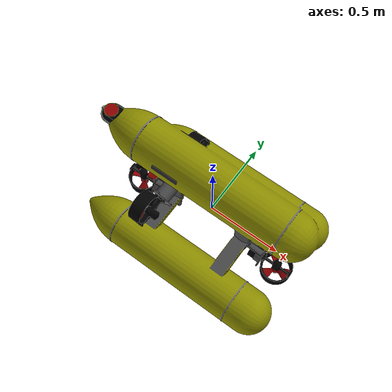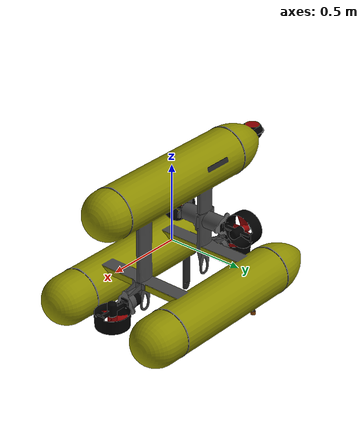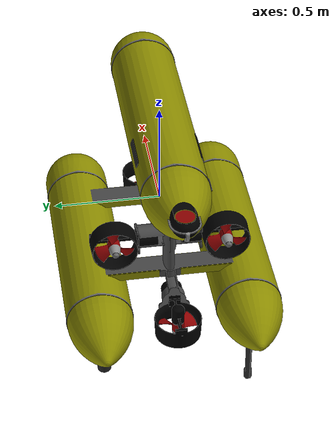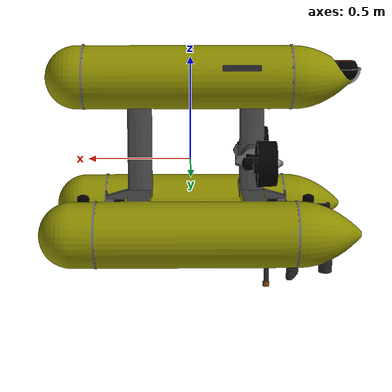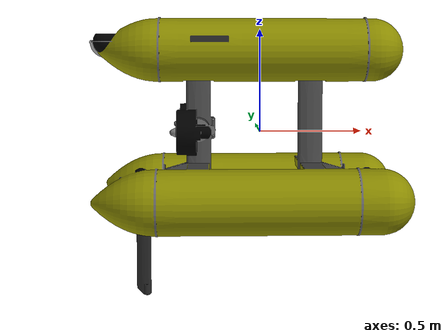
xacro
<?xml version='1.0' encoding='utf-8'?>
<robot xmlns:xacro="http://www.ros.org/wiki/xacro" name="$(arg robot_name)" family="underwater">
  <xacro:arg name="robot_name" default="girona500" />
  <xacro:arg name="environment" default="sim" />

  <!-- Vehicle -->
  <link name="$(arg robot_name)/base_link" tf_type="base">
    <visual>
      <origin rpy="-1.57 0 3.14" xyz="0.7 0 0.4" />
      <geometry>
        <mesh filename="package://girona500_description/meshes/girona500.dae" />
      </geometry>
    </visual>
  </link>

  <!-- Sensors -->
  <link name="$(arg robot_name)/dvl" tf_type="sensor" />
  <joint name="$(arg robot_name)/base_to_dvl" type="fixed">
    <parent link="$(arg robot_name)/base_link" />
    <child link="$(arg robot_name)/dvl" />
    <origin rpy="3.1416 0.0000 -0.7854" xyz="-0.643 0.000 0.538" />
  </joint>
  <link name="$(arg robot_name)/dvl_altitude" tf_type="sensor" />
  <joint name="$(arg robot_name)/base_to_dvl_altitude" type="fixed">
    <parent link="$(arg robot_name)/dvl" />
    <child link="$(arg robot_name)/dvl_altitude" />
    <origin rpy="0 1.5708 0" xyz="0 0 0" />
  </joint>
  <link name="$(arg robot_name)/gps" tf_type="sensor" />
  <joint name="$(arg robot_name)/base_to_gps" type="fixed">
    <parent link="$(arg robot_name)/base_link" />
    <child link="$(arg robot_name)/gps" />
    <origin rpy="0 0 0" xyz="-0.436 -0.350 -0.657" />
  </joint>
  <link name="$(arg robot_name)/imu" tf_type="sensor" />
  <joint name="$(arg robot_name)/base_to_imu" type="fixed">
    <parent link="$(arg robot_name)/base_link" />
    <child link="$(arg robot_name)/imu" />
    <origin rpy="1.5708 0 0" xyz="0.076 0.372 -0.301" />
  </joint>
  <link name="$(arg robot_name)/imu_filter" tf_type="sensor" />
  <joint name="$(arg robot_name)/base_to_imu_filter" type="fixed">
    <parent link="$(arg robot_name)/base_link" />
    <child link="$(arg robot_name)/imu_filter" />
    <origin rpy="0 0 0" xyz="0.076 0.372 -0.301" />
  </joint>
  <link name="$(arg robot_name)/pressure" tf_type="sensor" />
  <joint name="$(arg robot_name)/base_to_pressure" type="fixed">
    <parent link="$(arg robot_name)/base_link" />
    <child link="$(arg robot_name)/pressure" />
    <origin rpy="0 0 0" xyz="0.076 0.372 -0.301" />
  </joint>

  <!-- Thrusters -->
  <link name="$(arg robot_name)/thruster_0" tf_type="thruster" />
  <joint name="$(arg robot_name)/base_to_thruster_0" type="fixed">
    <parent link="$(arg robot_name)/base_link" />
    <child link="$(arg robot_name)/thruster_0" />
    <origin rpy="0 0 3.1416" xyz="-0.355 0.261 0.020" />
  </joint>
  <link name="$(arg robot_name)/thruster_1" tf_type="thruster" />
  <joint name="$(arg robot_name)/base_to_thruster_1" type="fixed">
    <parent link="$(arg robot_name)/base_link" />
    <child link="$(arg robot_name)/thruster_1" />
    <origin rpy="0 0 3.1416" xyz="-0.355 -0.261 0.020" />
  </joint>
  <link name="$(arg robot_name)/thruster_2" tf_type="thruster" />
  <joint name="$(arg robot_name)/base_to_thruster_2" type="fixed">
    <parent link="$(arg robot_name)/base_link" />
    <child link="$(arg robot_name)/thruster_2" />
    <origin rpy="0 1.5708 0" xyz="0.530 0 -0.310" />
  </joint>
  <link name="$(arg robot_name)/thruster_3" tf_type="thruster" />
  <joint name="$(arg robot_name)/base_to_thruster_3" type="fixed">
    <parent link="$(arg robot_name)/base_link" />
    <child link="$(arg robot_name)/thruster_3" />
    <origin rpy="0 1.5708 0" xyz="-0.585 0 -0.310" />
  </joint>
  <link name="$(arg robot_name)/thruster_4" tf_type="thruster" />
  <joint name="$(arg robot_name)/base_to_thruster_4" type="fixed">
    <parent link="$(arg robot_name)/base_link" />
    <child link="$(arg robot_name)/thruster_4" />
    <origin rpy="0 0 -1.5708" xyz="0 0 0" />
  </joint>

  <!-- Cameras -->
  <link name="$(arg robot_name)/camera_front" tf_type="sensor" />
  <joint name="$(arg robot_name)/base_to_camera_front" type="fixed">
    <parent link="$(arg robot_name)/base_link" />
    <child link="$(arg robot_name)/camera_front" />
    <origin rpy="1.57 0 1.2" xyz="0.38 0.1 0.1" />
  </joint>

  <link name="$(arg robot_name)/camera_down" tf_type="sensor"/>
  <joint name="$(arg robot_name)/camera_down_joint" type="fixed">
    <parent link="$(arg robot_name)/base_link"/>
    <child link="$(arg robot_name)/camera_down"/>
    <origin rpy="0 0 0" xyz="0.2 -0.048 0.76" />
  </joint>

  <link name="$(arg robot_name)/camera_down/optical_frame" tf_type="sensor"/>
  <joint name="$(arg robot_name)/camera_down_optical_frame_joint" type="fixed">
    <parent link="$(arg robot_name)/camera_down"/>
    <child link="$(arg robot_name)/camera_down/optical_frame"/>
    <origin xyz="0.0 0.0 0.0" rpy="0.0 0.0 1.57"/>
  </joint>

  <!-- ROS 2 control: simulation defaults; real thruster channels require vehicle-specific configuration. -->
  <ros2_control name="$(arg robot_name)_thrusters" type="system">
    <hardware>
      <plugin>sura_hardware_interface/ThrustersSystem</plugin>
      <param name="environment">$(arg environment)</param>
    </hardware>

    <joint name="$(arg robot_name)/base_to_thruster_0">
      <command_interface name="effort"/>
      <state_interface name="effort"/>
      <param name="lookup_csv">config/t200_lookup.csv</param>
      <param name="stonefish_topic">/$(arg robot_name)/controller/thruster_setpoints_sim</param>
    </joint>
    <joint name="$(arg robot_name)/base_to_thruster_1">
      <command_interface name="effort"/>
      <state_interface name="effort"/>
      <param name="lookup_csv">config/t200_lookup.csv</param>
      <param name="stonefish_topic">/$(arg robot_name)/controller/thruster_setpoints_sim</param>
    </joint>
    <joint name="$(arg robot_name)/base_to_thruster_2">
      <command_interface name="effort"/>
      <state_interface name="effort"/>
      <param name="lookup_csv">config/t200_lookup.csv</param>
      <param name="stonefish_topic">/$(arg robot_name)/controller/thruster_setpoints_sim</param>
    </joint>
    <joint name="$(arg robot_name)/base_to_thruster_3">
      <command_interface name="effort"/>
      <state_interface name="effort"/>
      <param name="lookup_csv">config/t200_lookup.csv</param>
      <param name="stonefish_topic">/$(arg robot_name)/controller/thruster_setpoints_sim</param>
    </joint>
    <joint name="$(arg robot_name)/base_to_thruster_4">
      <command_interface name="effort"/>
      <state_interface name="effort"/>
      <param name="lookup_csv">config/t200_lookup.csv</param>
      <param name="stonefish_topic">/$(arg robot_name)/controller/thruster_setpoints_sim</param>
    </joint>
  </ros2_control>

  <ros2_control name="$(arg robot_name)_sensors" type="system">
    <hardware>
      <plugin>sura_hardware_interface/SensorsSystem</plugin>
      <param name="environment">$(arg environment)</param>
    </hardware>

    <sensor name="imu_sensor">
      <param name="interface">sura_hardware_interface/ImuInterface</param>
      <param name="broadcaster">imu_broadcaster</param>
      <param name="read_rate_hz">100.0</param>
      <param name="frame_id">$(arg robot_name)/imu</param>
      <param name="stonefish_topic">/$(arg robot_name)/stonefish/sensors/imu</param>
      <param name="msg_type">sensor_msgs/msg/Imu</param>
      <state_interface name="orientation.x"/>
      <state_interface name="orientation.y"/>
      <state_interface name="orientation.z"/>
      <state_interface name="orientation.w"/>
      <state_interface name="angular_velocity.x"/>
      <state_interface name="angular_velocity.y"/>
      <state_interface name="angular_velocity.z"/>
      <state_interface name="linear_acceleration.x"/>
      <state_interface name="linear_acceleration.y"/>
      <state_interface name="linear_acceleration.z"/>
      <state_interface name="sample_time.sec"/>
      <state_interface name="sample_time.nanosec"/>
    </sensor>

    <sensor name="pressure_sensor">
      <param name="interface">sura_hardware_interface/PressureInterface</param>
      <param name="broadcaster">pressure_broadcaster</param>
      <param name="read_rate_hz">50.0</param>
      <param name="frame_id">$(arg robot_name)/pressure</param>
      <param name="stonefish_topic">/$(arg robot_name)/stonefish/sensors/pressure</param>
      <param name="msg_type">sensor_msgs/msg/FluidPressure</param>
      <state_interface name="fluid_pressure"/>
    </sensor>

    <sensor name="dvl_sensor">
      <param name="interface">sura_hardware_interface/DvlInterface</param>
      <param name="broadcaster">dvl75_velocity_broadcaster</param>
      <param name="broadcaster">dvl75_altitude_broadcaster</param>
      <param name="read_rate_hz">20.0</param>
      <param name="frame_id">$(arg robot_name)/dvl</param>
      <param name="stonefish_topic">/$(arg robot_name)/stonefish/sensors/dvl</param>
      <param name="stonefish_altitude_topic">/$(arg robot_name)/stonefish/sensors/dvl_altitude</param>
      <param name="stonefish_gps_topic">/$(arg robot_name)/stonefish/sensors/gps</param>
      <param name="msg_type">geometry_msgs/msg/TwistStamped</param>
      <state_interface name="linear_velocity.x"/>
      <state_interface name="linear_velocity.y"/>
      <state_interface name="linear_velocity.z"/>
      <state_interface name="angular_velocity.x"/>
      <state_interface name="angular_velocity.y"/>
      <state_interface name="angular_velocity.z"/>
      <state_interface name="distance_z"/>
      <state_interface name="confidence"/>
    </sensor>

    <sensor name="gps_sensor">
      <param name="interface">sura_hardware_interface/GpsInterface</param>
      <param name="broadcaster">gps_broadcaster</param>
      <param name="read_rate_hz">1.0</param>
      <param name="frame_id">$(arg robot_name)/gps</param>
      <param name="stonefish_topic">/$(arg robot_name)/stonefish/sensors/gps</param>
      <param name="msg_type">sensor_msgs/msg/NavSatFix</param>
      <state_interface name="gps.latitude"/>
      <state_interface name="gps.longitude"/>
      <state_interface name="gps.altitude"/>
      <state_interface name="gps.valid"/>
    </sensor>
  </ros2_control>
</robot>
